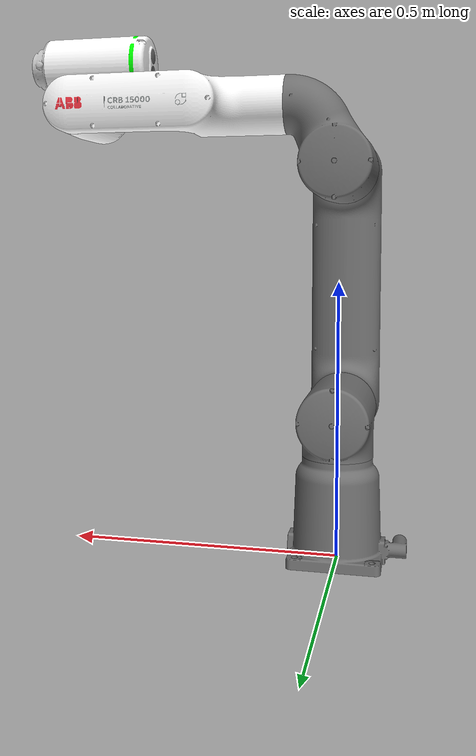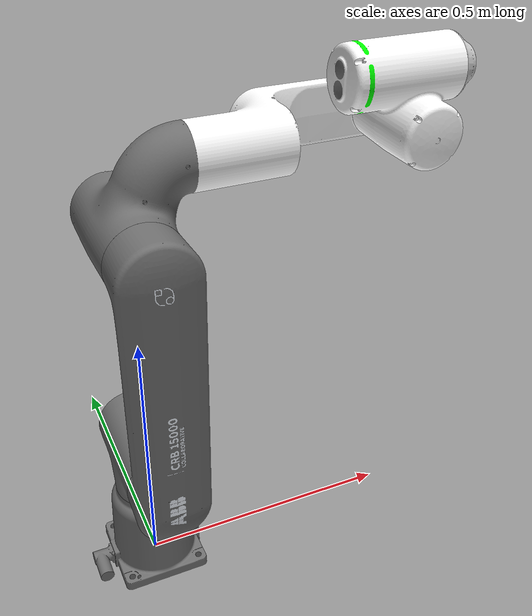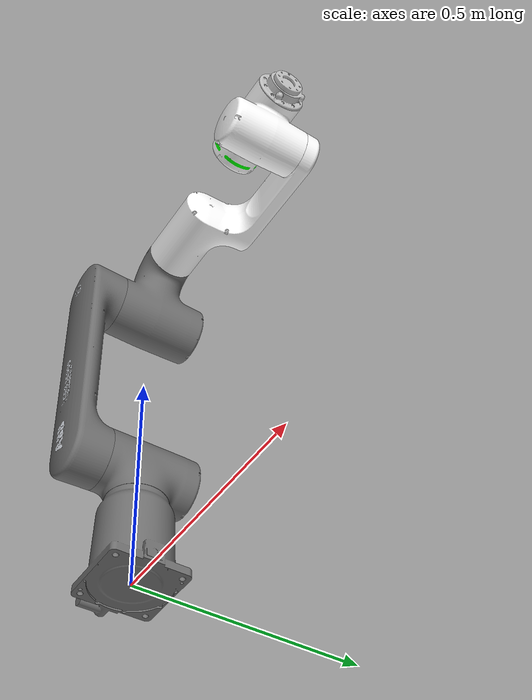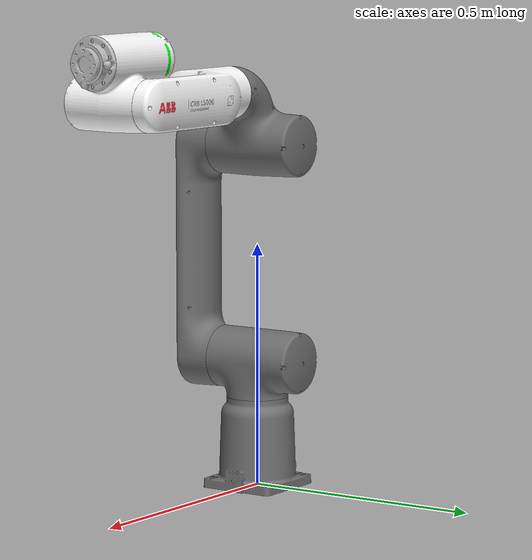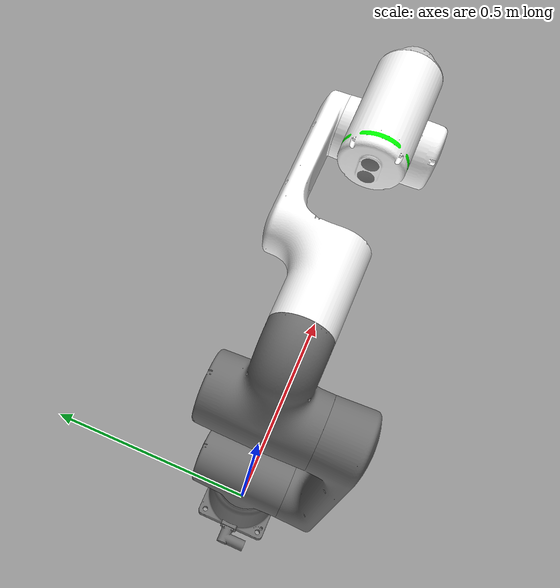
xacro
<?xml version="1.0"?>
<robot name="abb_gofa.crb15000" xmlns:xacro="http://www.ros.org/wiki/xacro">
    <xacro:include filename="$(find abb_gofa_description)/urdf/abb_gofa.crb15000.urdf.xacro"/>
    <xacro:include filename="$(find abb_gofa_description)/urdf/abb_gofa.crb15000_ros2_control.urdf.xacro"/>
    <xacro:include filename="$(find abb_gofa_description)/urdf/abb_gofa.crb15000_gazebo.urdf.xacro"/>

    <xacro:arg name="tf_prefix" default="" />

    <link name="world"/>

    <xacro:insert_robot parent="world" prefix="$(arg tf_prefix)">
        <origin xyz="0 0 0" rpy="0 0 0"/>
    </xacro:insert_robot>

    <xacro:insert_ros2_control name="abb_gofa.crb15000" prefix="$(arg tf_prefix)"/>
    <xacro:insert_gazebo prefix="$(arg tf_prefix)"/>
</robot>

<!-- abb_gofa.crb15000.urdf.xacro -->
<robot xmlns:xacro="http://www.ros.org/wiki/xacro">

    <xacro:macro name="insert_robot" params="prefix parent *origin">
        <!-- BASE LINK -->
        <link name="${prefix}base">
            <visual>
                <origin xyz="0 0 0" rpy="0 0 0"/>
                <geometry>
                    <mesh filename="package:/abb_gofa_description/meshes/visual/base.dae" scale="1 1 1"/>
                </geometry>
            </visual>

            <collision>
                <origin xyz="0 0 0" rpy="0 0 0"/>
                <geometry>
                    <mesh filename="package:/abb_gofa_description/meshes/collision/base.stl" scale="1 1 1"/>
                </geometry>
            </collision>

            <inertial>
                <origin xyz="-0.007 -0.001 0.079" rpy="0 0 0"/>
                <mass value="4.905698"/>
                <inertia ixx="0.021755" ixy="-0.000332" ixz="-0.000992" iyy="0.025038" iyz="-0.000087" izz="0.020455"/>
            </inertial>
        </link>

        <joint name="${prefix}base_link" type="fixed">
            <parent link="${parent}"/>
            <child link="${prefix}base"/>
            <xacro:insert_block name="origin"/>
        </joint>

        <!-- LINK1 -->
        <link name="${prefix}link1">
            <visual>
                <origin xyz="0 0 0" rpy="0 0 0"/>
                <geometry>
                    <mesh filename="package:/abb_gofa_description/meshes/visual/link1.dae" scale="1 1 1"/>
                </geometry>
            </visual>

            <collision>
                <origin xyz="0 0 0" rpy="0 0 0"/>
                <geometry>
                    <mesh filename="package:/abb_gofa_description/meshes/collision/link1.stl" scale="1 1 1"/>
                </geometry>
            </collision>

            <inertial>
                <origin xyz="0 0.011 0.067" rpy="0 0 0"/>
                <mass value="3.176119"/>
                <inertia ixx="0.013466" ixy="0.0" ixz="-0.000001" iyy="0.007766" iyz="-0.000182" izz="0.012863"/>
            </inertial>
        </link>

        <joint name="${prefix}axis1_rotation" type="revolute">
            <parent link="${prefix}base"/>
            <child link="${prefix}link1"/>
            <origin xyz="0 0 0.1855" rpy="0 0 0"/>
            <axis xyz="0 0 1"/>
            <limit lower="${-180*pi/180}" upper="${180*pi/180}" velocity="${125*pi/180}" effort="1000"/>
        </joint>

        <!-- LINK2 -->
        <link name="${prefix}link2">
            <visual>
                <origin xyz="0 0 0" rpy="0 0 0"/>
                <geometry>
                    <mesh filename="package:/abb_gofa_description/meshes/visual/link2.dae" scale="1 1 1"/>
                </geometry>
            </visual>

            <collision>
                <origin xyz="0 0 0" rpy="0 0 0"/>
                <geometry>
                    <mesh filename="package:/abb_gofa_description/meshes/collision/link2.stl" scale="1 1 1"/>
                </geometry>
            </collision>

            <inertial>
                <origin xyz="0 -0.041 0.222" rpy="0 0 0"/>
                <mass value="6.339935"/>
                <inertia ixx="0.160583" ixy="-0.000005" ixz="0.000022" iyy="0.165212" iyz="0.000002" izz="0.011745"/>
            </inertial>
        </link>

        <joint name="${prefix}axis2_arm" type="revolute">
            <parent link="${prefix}link1"/>
            <child link="${prefix}link2"/>
            <origin xyz="0 -0.085 0.0765" rpy="0 0 0"/>
            <axis xyz="0 1 0"/>
            <limit lower="${-180*pi/180}" upper="${180*pi/180}" velocity="${125*pi/180}" effort="1000"/>
        </joint>

        <!-- LINK3 -->
        <link name="${prefix}link3">
            <visual>
                <origin xyz="0 0 0" rpy="0 0 0"/>
                <geometry>
                    <mesh filename="package:/abb_gofa_description/meshes/visual/link3.dae" scale="1 1 1"/>
                </geometry>
            </visual>

            <collision>
                <origin xyz="0 0 0" rpy="0 0 0"/>
                <geometry>
                    <mesh filename="package:/abb_gofa_description/meshes/collision/link3.stl" scale="1 1 1"/>
                </geometry>
            </collision>

            <inertial>
                <origin xyz="0.017 0.094 0.030" rpy="0 0 0"/>
                <mass value="4.314157"/>
                <inertia ixx="0.022588" ixy="0.000348" ixz="-0.003893" iyy="0.017873" iyz="0.000635" izz="0.017803"/>
            </inertial>
        </link>

        <joint name="${prefix}axis3_arm" type="revolute">
            <parent link="${prefix}link2"/>
            <child link="${prefix}link3"/>
            <origin xyz="0 0 0.444" rpy="0 0 0"/>
            <axis xyz="0 1 0"/>
            <limit lower="${-225*pi/180}" upper="${85*pi/180}" velocity="${140*pi/180}" effort="1000"/>
        </joint>

        <!-- LINK4 -->
        <link name="${prefix}link4">
            <visual>
                <origin xyz="0 0 0" rpy="0 0 0"/>
                <geometry>
                    <mesh filename="package:/abb_gofa_description/meshes/visual/link4.dae" scale="1 1 1"/>
                </geometry>
            </visual>

            <collision>
                <origin xyz="0 0 0" rpy="0 0 0"/>
                <geometry>
                    <mesh filename="package:/abb_gofa_description/meshes/collision/link4.stl" scale="1 1 1"/>
                </geometry>
            </collision>

            <inertial>
                <origin xyz="0 0.042 0.183" rpy="0 0 0"/>
                <mass value="5.023341"/>
                <inertia ixx="0.063463" ixy="0.000005" ixz="0.000006" iyy="0.058260" iyz="-0.011954" izz="0.013008"/>
            </inertial>
        </link>

        <joint name="${prefix}axis4_wrist" type="revolute">
            <parent link="${prefix}link3"/>
            <child link="${prefix}link4"/>
            <origin xyz="0.096 0.085 0.110" rpy="0 ${pi/2} 0"/>
            <axis xyz="0 0 1"/>
            <limit lower="${-180*pi/180}" upper="${180*pi/180}" velocity="${200*pi/180}" effort="1000"/>
        </joint>

        <!-- LINK5 -->
        <link name="${prefix}link5">
            <visual>
                <origin xyz="0 0 0" rpy="0 0 0"/>
                <geometry>
                    <mesh filename="package:/abb_gofa_description/meshes/visual/link5.dae" scale="1 1 1"/>
                </geometry>
            </visual>

            <collision>
                <origin xyz="0 0 0" rpy="0 0 0"/>
                <geometry>
                    <mesh filename="package:/abb_gofa_description/meshes/collision/link5.stl" scale="1 1 1"/>
                </geometry>
            </collision>

            <inertial>
                <origin xyz="-0.042 -0.079 -0.018" rpy="0 0 0"/>
                <mass value="4.027630"/>
                <inertia ixx="0.015907" ixy="0.000502" ixz="-0.001510" iyy="0.017628" iyz="0.000200" izz="0.014957"/>
            </inertial>
        </link>

        <joint name="${prefix}axis5_bend" type="revolute">
            <parent link="${prefix}link4"/>
            <child link="${prefix}link5"/>
            <origin xyz="0 0.0755 0.373" rpy="0 0 0"/>
            <axis xyz="0 1 0"/>
            <limit lower="${-180*pi/180}" upper="${180*pi/180}" velocity="${200*pi/180}" effort="1000"/>
        </joint>

        <!-- LINK6 -->
        <link name="${prefix}link6">
            <visual>
                <origin xyz="0 0 0" rpy="0 0 0"/>
                <geometry>
                    <mesh filename="package:/abb_gofa_description/meshes/visual/link6.dae" scale="1 1 1"/>
                </geometry>
            </visual>

            <collision>
                <origin xyz="0 0 0" rpy="0 0 0"/>
                <geometry>
                    <mesh filename="package:/abb_gofa_description/meshes/collision/link6.stl" scale="1 1 1"/>
                </geometry>
            </collision>

            <inertial>
                <origin xyz="0 0 0.014" rpy="0 0 0"/>
                <mass value="0.213120"/>
                <inertia ixx="0.000127" ixy="0.000001" ixz="0.0" iyy="0.000127" iyz="0.0" izz="0.000219"/>
            </inertial>
        </link>

        <joint name="${prefix}axis6_turn" type="revolute">
            <parent link="${prefix}link5"/>
            <child link="${prefix}link6"/>
            <origin xyz="-0.080 -0.0745 0.068" rpy="0 0 0"/>
            <axis xyz="0 0 1"/>
            <limit lower="${-270*pi/180}" upper="${270*pi/180}" velocity="${200*pi/180}" effort="1000"/>
        </joint>

        <!-- TOOL EEF -->
        <link name="${prefix}tool_eef"/>

        <joint name="${prefix}tool_eef_fixed_joint" type="fixed">
            <parent link="${prefix}link6"/>
            <child link="${prefix}tool_eef"/>
            <origin xyz="0 0 0.0326" rpy="0 0 0"/>
        </joint>

    </xacro:macro>
</robot>
